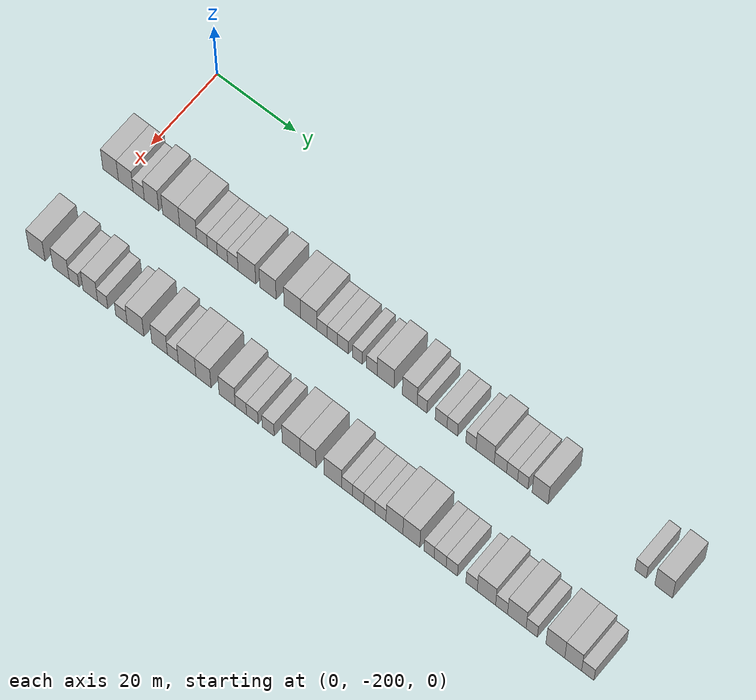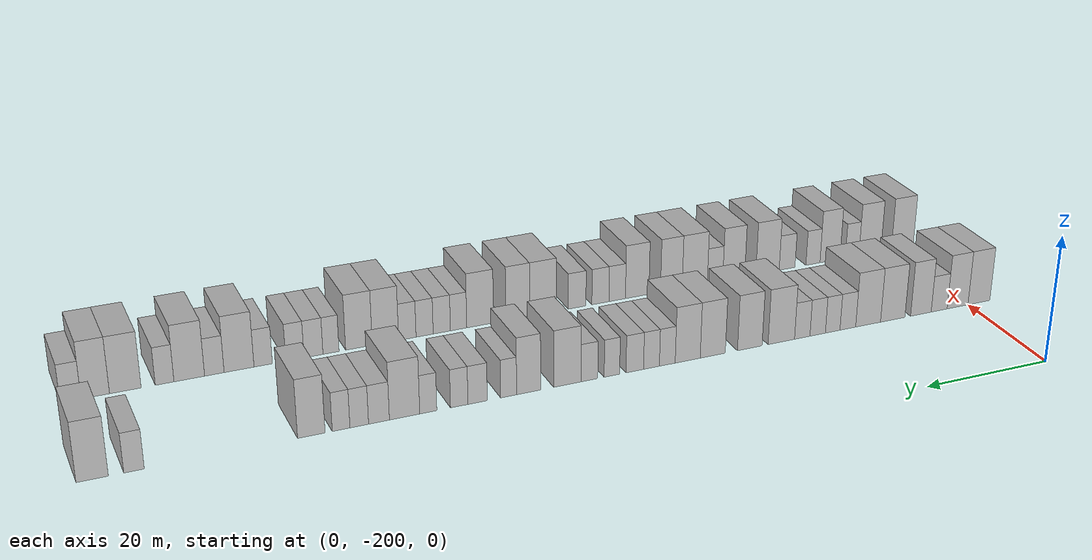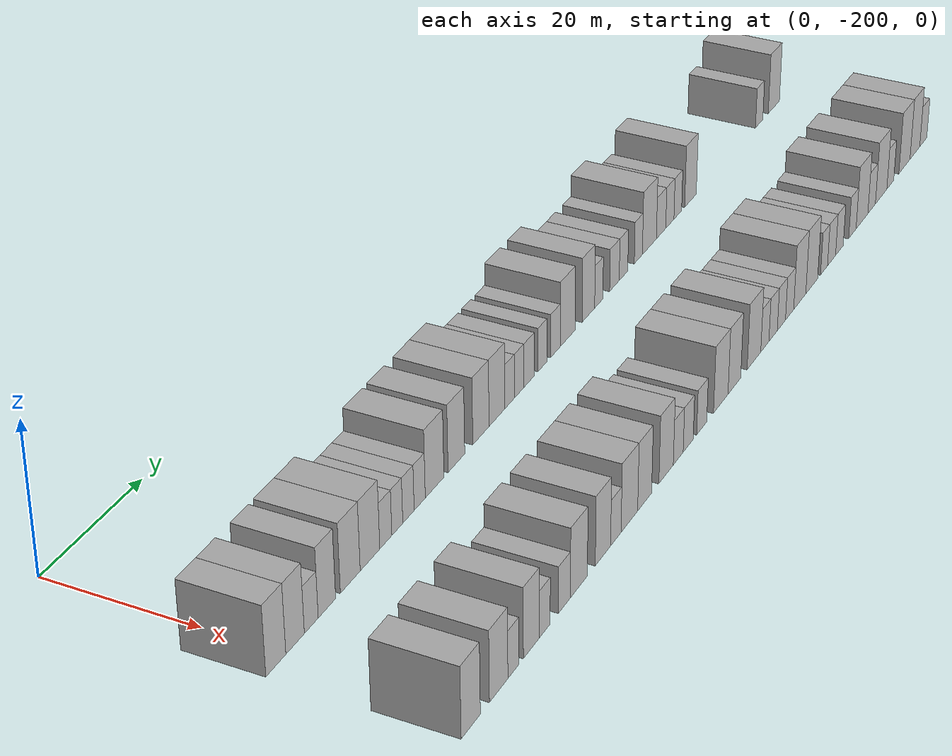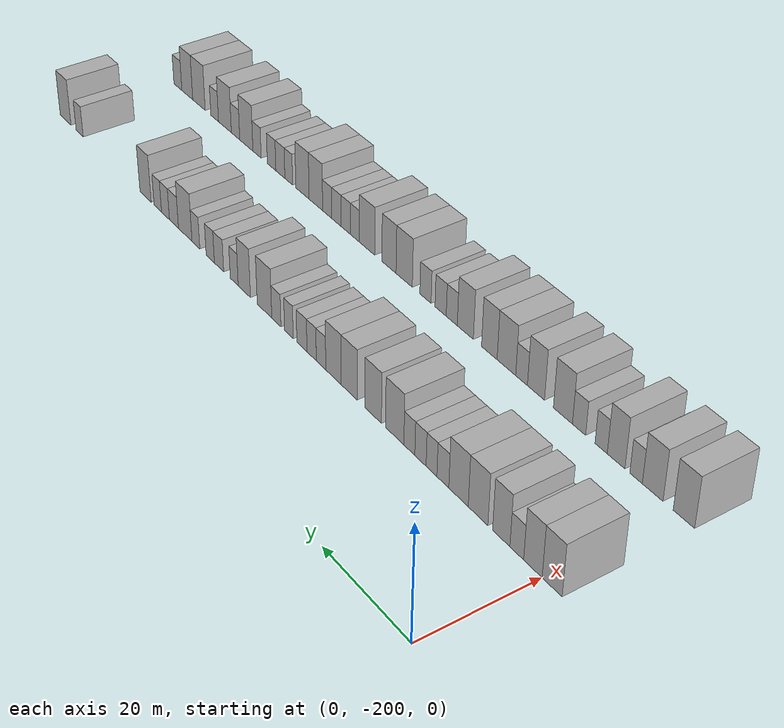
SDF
<sdf version="1.6">
 <world name="default">
  <model name="building_1">
   <static>1</static>
   <pose>25.0000 -202.0031 0 0.000000 0.000000 0.000000</pose>
   <link name="link">
    <pose>0 0 4.50 0 0 0</pose>
    <collision name="collision"><geometry><box><size>10.0000 3.9939 9.0000</size></box></geometry></collision>
    <visual name="visual">
     <cast_shadows>0</cast_shadows>
     <geometry><box><size>10.0000 3.9939 9.0000</size></box></geometry>
     <material>
      <script>
       <uri>model://HANNAS_wall/materials/scripts</uri>
       <uri>model://HANNAS_wall/materials/textures</uri>
       <name>vrc/HANNAS_wall</name>
      </script>
     </material>
    </visual>
   </link>
  </model>
  <model name="building_2">
   <static>1</static>
   <pose>25.0000 -198.1215 0 0.000000 0.000000 0.000000</pose>
   <link name="link">
    <pose>0 0 4.50 0 0 0</pose>
    <collision name="collision"><geometry><box><size>10.0000 3.7692 9.0000</size></box></geometry></collision>
    <visual name="visual">
     <cast_shadows>0</cast_shadows>
     <geometry><box><size>10.0000 3.7692 9.0000</size></box></geometry>
     <material>
      <script>
       <uri>model://HANNAS_wall/materials/scripts</uri>
       <uri>model://HANNAS_wall/materials/textures</uri>
       <name>vrc/HANNAS_wall</name>
      </script>
     </material>
    </visual>
   </link>
  </model>
  <model name="building_3">
   <static>1</static>
   <pose>25.0000 -194.8044 0 0.000000 0.000000 0.000000</pose>
   <link name="link">
    <pose>0 0 3.00 0 0 0</pose>
    <collision name="collision"><geometry><box><size>10.0000 2.8649 6.0000</size></box></geometry></collision>
    <visual name="visual">
     <cast_shadows>0</cast_shadows>
     <geometry><box><size>10.0000 2.8649 6.0000</size></box></geometry>
     <material>
      <script>
       <uri>model://HANNAS_wall/materials/scripts</uri>
       <uri>model://HANNAS_wall/materials/textures</uri>
       <name>vrc/HANNAS_wall</name>
      </script>
     </material>
    </visual>
   </link>
  </model>
  <model name="building_4">
   <static>1</static>
   <pose>25.0000 -191.5345 0 0.000000 0.000000 0.000000</pose>
   <link name="link">
    <pose>0 0 4.50 0 0 0</pose>
    <collision name="collision"><geometry><box><size>10.0000 3.6749 9.0000</size></box></geometry></collision>
    <visual name="visual">
     <cast_shadows>0</cast_shadows>
     <geometry><box><size>10.0000 3.6749 9.0000</size></box></geometry>
     <material>
      <script>
       <uri>model://HANNAS_wall/materials/scripts</uri>
       <uri>model://HANNAS_wall/materials/textures</uri>
       <name>vrc/HANNAS_wall</name>
      </script>
     </material>
    </visual>
   </link>
  </model>
  <model name="building_5">
   <static>1</static>
   <pose>25.0000 -186.5516 0 0.000000 0.000000 0.000000</pose>
   <link name="link">
    <pose>0 0 4.50 0 0 0</pose>
    <collision name="collision"><geometry><box><size>10.0000 4.2910 9.0000</size></box></geometry></collision>
    <visual name="visual">
     <cast_shadows>0</cast_shadows>
     <geometry><box><size>10.0000 4.2910 9.0000</size></box></geometry>
     <material>
      <script>
       <uri>model://HANNAS_wall/materials/scripts</uri>
       <uri>model://HANNAS_wall/materials/textures</uri>
       <name>vrc/HANNAS_wall</name>
      </script>
     </material>
    </visual>
   </link>
  </model>
  <model name="building_6">
   <static>1</static>
   <pose>25.0000 -182.2381 0 0.000000 0.000000 0.000000</pose>
   <link name="link">
    <pose>0 0 4.50 0 0 0</pose>
    <collision name="collision"><geometry><box><size>10.0000 4.3360 9.0000</size></box></geometry></collision>
    <visual name="visual">
     <cast_shadows>0</cast_shadows>
     <geometry><box><size>10.0000 4.3360 9.0000</size></box></geometry>
     <material>
      <script>
       <uri>model://HANNAS_wall/materials/scripts</uri>
       <uri>model://HANNAS_wall/materials/textures</uri>
       <name>vrc/HANNAS_wall</name>
      </script>
     </material>
    </visual>
   </link>
  </model>
  <model name="building_7">
   <static>1</static>
   <pose>25.0000 -178.7124 0 0.000000 0.000000 0.000000</pose>
   <link name="link">
    <pose>0 0 3.00 0 0 0</pose>
    <collision name="collision"><geometry><box><size>10.0000 2.7153 6.0000</size></box></geometry></collision>
    <visual name="visual">
     <cast_shadows>0</cast_shadows>
     <geometry><box><size>10.0000 2.7153 6.0000</size></box></geometry>
     <material>
      <script>
       <uri>model://HANNAS_wall/materials/scripts</uri>
       <uri>model://HANNAS_wall/materials/textures</uri>
       <name>vrc/HANNAS_wall</name>
      </script>
     </material>
    </visual>
   </link>
  </model>
  <model name="building_8">
   <static>1</static>
   <pose>25.0000 -176.1058 0 0.000000 0.000000 0.000000</pose>
   <link name="link">
    <pose>0 0 3.00 0 0 0</pose>
    <collision name="collision"><geometry><box><size>10.0000 2.4980 6.0000</size></box></geometry></collision>
    <visual name="visual">
     <cast_shadows>0</cast_shadows>
     <geometry><box><size>10.0000 2.4980 6.0000</size></box></geometry>
     <material>
      <script>
       <uri>model://HANNAS_wall/materials/scripts</uri>
       <uri>model://HANNAS_wall/materials/textures</uri>
       <name>vrc/HANNAS_wall</name>
      </script>
     </material>
    </visual>
   </link>
  </model>
  <model name="building_9">
   <static>1</static>
   <pose>25.0000 -173.5377 0 0.000000 0.000000 0.000000</pose>
   <link name="link">
    <pose>0 0 3.00 0 0 0</pose>
    <collision name="collision"><geometry><box><size>10.0000 2.6382 6.0000</size></box></geometry></collision>
    <visual name="visual">
     <cast_shadows>0</cast_shadows>
     <geometry><box><size>10.0000 2.6382 6.0000</size></box></geometry>
     <material>
      <script>
       <uri>model://HANNAS_wall/materials/scripts</uri>
       <uri>model://HANNAS_wall/materials/textures</uri>
       <name>vrc/HANNAS_wall</name>
      </script>
     </material>
    </visual>
   </link>
  </model>
  <model name="building_10">
   <static>1</static>
   <pose>25.0000 -170.9153 0 0.000000 0.000000 0.000000</pose>
   <link name="link">
    <pose>0 0 3.00 0 0 0</pose>
    <collision name="collision"><geometry><box><size>10.0000 2.6066 6.0000</size></box></geometry></collision>
    <visual name="visual">
     <cast_shadows>0</cast_shadows>
     <geometry><box><size>10.0000 2.6066 6.0000</size></box></geometry>
     <material>
      <script>
       <uri>model://HANNAS_wall/materials/scripts</uri>
       <uri>model://HANNAS_wall/materials/textures</uri>
       <name>vrc/HANNAS_wall</name>
      </script>
     </material>
    </visual>
   </link>
  </model>
  <model name="building_11">
   <static>1</static>
   <pose>25.0000 -167.3863 0 0.000000 0.000000 0.000000</pose>
   <link name="link">
    <pose>0 0 4.50 0 0 0</pose>
    <collision name="collision"><geometry><box><size>10.0000 4.4516 9.0000</size></box></geometry></collision>
    <visual name="visual">
     <cast_shadows>0</cast_shadows>
     <geometry><box><size>10.0000 4.4516 9.0000</size></box></geometry>
     <material>
      <script>
       <uri>model://HANNAS_wall/materials/scripts</uri>
       <uri>model://HANNAS_wall/materials/textures</uri>
       <name>vrc/HANNAS_wall</name>
      </script>
     </material>
    </visual>
   </link>
  </model>
  <model name="building_12">
   <static>1</static>
   <pose>25.0000 -162.1167 0 0.000000 0.000000 0.000000</pose>
   <link name="link">
    <pose>0 0 4.50 0 0 0</pose>
    <collision name="collision"><geometry><box><size>10.0000 4.0875 9.0000</size></box></geometry></collision>
    <visual name="visual">
     <cast_shadows>0</cast_shadows>
     <geometry><box><size>10.0000 4.0875 9.0000</size></box></geometry>
     <material>
      <script>
       <uri>model://HANNAS_wall/materials/scripts</uri>
       <uri>model://HANNAS_wall/materials/textures</uri>
       <name>vrc/HANNAS_wall</name>
      </script>
     </material>
    </visual>
   </link>
  </model>
  <model name="building_13">
   <static>1</static>
   <pose>25.0000 -156.0221 0 0.000000 0.000000 0.000000</pose>
   <link name="link">
    <pose>0 0 4.50 0 0 0</pose>
    <collision name="collision"><geometry><box><size>10.0000 4.1019 9.0000</size></box></geometry></collision>
    <visual name="visual">
     <cast_shadows>0</cast_shadows>
     <geometry><box><size>10.0000 4.1019 9.0000</size></box></geometry>
     <material>
      <script>
       <uri>model://HANNAS_wall/materials/scripts</uri>
       <uri>model://HANNAS_wall/materials/textures</uri>
       <name>vrc/HANNAS_wall</name>
      </script>
     </material>
    </visual>
   </link>
  </model>
  <model name="building_14">
   <static>1</static>
   <pose>25.0000 -151.9481 0 0.000000 0.000000 0.000000</pose>
   <link name="link">
    <pose>0 0 4.50 0 0 0</pose>
    <collision name="collision"><geometry><box><size>10.0000 4.0460 9.0000</size></box></geometry></collision>
    <visual name="visual">
     <cast_shadows>0</cast_shadows>
     <geometry><box><size>10.0000 4.0460 9.0000</size></box></geometry>
     <material>
      <script>
       <uri>model://HANNAS_wall/materials/scripts</uri>
       <uri>model://HANNAS_wall/materials/textures</uri>
       <name>vrc/HANNAS_wall</name>
      </script>
     </material>
    </visual>
   </link>
  </model>
  <model name="building_15">
   <static>1</static>
   <pose>25.0000 -148.6582 0 0.000000 0.000000 0.000000</pose>
   <link name="link">
    <pose>0 0 3.00 0 0 0</pose>
    <collision name="collision"><geometry><box><size>10.0000 2.5339 6.0000</size></box></geometry></collision>
    <visual name="visual">
     <cast_shadows>0</cast_shadows>
     <geometry><box><size>10.0000 2.5339 6.0000</size></box></geometry>
     <material>
      <script>
       <uri>model://HANNAS_wall/materials/scripts</uri>
       <uri>model://HANNAS_wall/materials/textures</uri>
       <name>vrc/HANNAS_wall</name>
      </script>
     </material>
    </visual>
   </link>
  </model>
  <model name="building_16">
   <static>1</static>
   <pose>25.0000 -146.1278 0 0.000000 0.000000 0.000000</pose>
   <link name="link">
    <pose>0 0 3.00 0 0 0</pose>
    <collision name="collision"><geometry><box><size>10.0000 2.5267 6.0000</size></box></geometry></collision>
    <visual name="visual">
     <cast_shadows>0</cast_shadows>
     <geometry><box><size>10.0000 2.5267 6.0000</size></box></geometry>
     <material>
      <script>
       <uri>model://HANNAS_wall/materials/scripts</uri>
       <uri>model://HANNAS_wall/materials/textures</uri>
       <name>vrc/HANNAS_wall</name>
      </script>
     </material>
    </visual>
   </link>
  </model>
  <model name="building_17">
   <static>1</static>
   <pose>25.0000 -143.4757 0 0.000000 0.000000 0.000000</pose>
   <link name="link">
    <pose>0 0 3.00 0 0 0</pose>
    <collision name="collision"><geometry><box><size>10.0000 2.7776 6.0000</size></box></geometry></collision>
    <visual name="visual">
     <cast_shadows>0</cast_shadows>
     <geometry><box><size>10.0000 2.7776 6.0000</size></box></geometry>
     <material>
      <script>
       <uri>model://HANNAS_wall/materials/scripts</uri>
       <uri>model://HANNAS_wall/materials/textures</uri>
       <name>vrc/HANNAS_wall</name>
      </script>
     </material>
    </visual>
   </link>
  </model>
  <model name="building_18">
   <static>1</static>
   <pose>25.0000 -139.8715 0 0.000000 0.000000 0.000000</pose>
   <link name="link">
    <pose>0 0 3.00 0 0 0</pose>
    <collision name="collision"><geometry><box><size>10.0000 2.4307 6.0000</size></box></geometry></collision>
    <visual name="visual">
     <cast_shadows>0</cast_shadows>
     <geometry><box><size>10.0000 2.4307 6.0000</size></box></geometry>
     <material>
      <script>
       <uri>model://HANNAS_wall/materials/scripts</uri>
       <uri>model://HANNAS_wall/materials/textures</uri>
       <name>vrc/HANNAS_wall</name>
      </script>
     </material>
    </visual>
   </link>
  </model>
  <model name="building_19">
   <static>1</static>
   <pose>25.0000 -136.3448 0 0.000000 0.000000 0.000000</pose>
   <link name="link">
    <pose>0 0 3.00 0 0 0</pose>
    <collision name="collision"><geometry><box><size>10.0000 2.6228 6.0000</size></box></geometry></collision>
    <visual name="visual">
     <cast_shadows>0</cast_shadows>
     <geometry><box><size>10.0000 2.6228 6.0000</size></box></geometry>
     <material>
      <script>
       <uri>model://HANNAS_wall/materials/scripts</uri>
       <uri>model://HANNAS_wall/materials/textures</uri>
       <name>vrc/HANNAS_wall</name>
      </script>
     </material>
    </visual>
   </link>
  </model>
  <model name="building_20">
   <static>1</static>
   <pose>25.0000 -132.9356 0 0.000000 0.000000 0.000000</pose>
   <link name="link">
    <pose>0 0 4.50 0 0 0</pose>
    <collision name="collision"><geometry><box><size>10.0000 4.1955 9.0000</size></box></geometry></collision>
    <visual name="visual">
     <cast_shadows>0</cast_shadows>
     <geometry><box><size>10.0000 4.1955 9.0000</size></box></geometry>
     <material>
      <script>
       <uri>model://HANNAS_wall/materials/scripts</uri>
       <uri>model://HANNAS_wall/materials/textures</uri>
       <name>vrc/HANNAS_wall</name>
      </script>
     </material>
    </visual>
   </link>
  </model>
  <model name="building_21">
   <static>1</static>
   <pose>25.0000 -127.0183 0 0.000000 0.000000 0.000000</pose>
   <link name="link">
    <pose>0 0 4.50 0 0 0</pose>
    <collision name="collision"><geometry><box><size>10.0000 3.6392 9.0000</size></box></geometry></collision>
    <visual name="visual">
     <cast_shadows>0</cast_shadows>
     <geometry><box><size>10.0000 3.6392 9.0000</size></box></geometry>
     <material>
      <script>
       <uri>model://HANNAS_wall/materials/scripts</uri>
       <uri>model://HANNAS_wall/materials/textures</uri>
       <name>vrc/HANNAS_wall</name>
      </script>
     </material>
    </visual>
   </link>
  </model>
  <model name="building_22">
   <static>1</static>
   <pose>25.0000 -123.9982 0 0.000000 0.000000 0.000000</pose>
   <link name="link">
    <pose>0 0 3.00 0 0 0</pose>
    <collision name="collision"><geometry><box><size>10.0000 2.4009 6.0000</size></box></geometry></collision>
    <visual name="visual">
     <cast_shadows>0</cast_shadows>
     <geometry><box><size>10.0000 2.4009 6.0000</size></box></geometry>
     <material>
      <script>
       <uri>model://HANNAS_wall/materials/scripts</uri>
       <uri>model://HANNAS_wall/materials/textures</uri>
       <name>vrc/HANNAS_wall</name>
      </script>
     </material>
    </visual>
   </link>
  </model>
  <model name="building_23">
   <static>1</static>
   <pose>25.0000 -119.3594 0 0.000000 0.000000 0.000000</pose>
   <link name="link">
    <pose>0 0 3.00 0 0 0</pose>
    <collision name="collision"><geometry><box><size>10.0000 2.8768 6.0000</size></box></geometry></collision>
    <visual name="visual">
     <cast_shadows>0</cast_shadows>
     <geometry><box><size>10.0000 2.8768 6.0000</size></box></geometry>
     <material>
      <script>
       <uri>model://HANNAS_wall/materials/scripts</uri>
       <uri>model://HANNAS_wall/materials/textures</uri>
       <name>vrc/HANNAS_wall</name>
      </script>
     </material>
    </visual>
   </link>
  </model>
  <model name="building_24">
   <static>1</static>
   <pose>25.0000 -116.6311 0 0.000000 0.000000 0.000000</pose>
   <link name="link">
    <pose>0 0 3.00 0 0 0</pose>
    <collision name="collision"><geometry><box><size>10.0000 2.5799 6.0000</size></box></geometry></collision>
    <visual name="visual">
     <cast_shadows>0</cast_shadows>
     <geometry><box><size>10.0000 2.5799 6.0000</size></box></geometry>
     <material>
      <script>
       <uri>model://HANNAS_wall/materials/scripts</uri>
       <uri>model://HANNAS_wall/materials/textures</uri>
       <name>vrc/HANNAS_wall</name>
      </script>
     </material>
    </visual>
   </link>
  </model>
  <model name="building_25">
   <static>1</static>
   <pose>25.0000 -112.0945 0 0.000000 0.000000 0.000000</pose>
   <link name="link">
    <pose>0 0 3.00 0 0 0</pose>
    <collision name="collision"><geometry><box><size>10.0000 2.4932 6.0000</size></box></geometry></collision>
    <visual name="visual">
     <cast_shadows>0</cast_shadows>
     <geometry><box><size>10.0000 2.4932 6.0000</size></box></geometry>
     <material>
      <script>
       <uri>model://HANNAS_wall/materials/scripts</uri>
       <uri>model://HANNAS_wall/materials/textures</uri>
       <name>vrc/HANNAS_wall</name>
      </script>
     </material>
    </visual>
   </link>
  </model>
  <model name="building_26">
   <static>1</static>
   <pose>25.0000 -108.6519 0 0.000000 0.000000 0.000000</pose>
   <link name="link">
    <pose>0 0 4.50 0 0 0</pose>
    <collision name="collision"><geometry><box><size>10.0000 4.3920 9.0000</size></box></geometry></collision>
    <visual name="visual">
     <cast_shadows>0</cast_shadows>
     <geometry><box><size>10.0000 4.3920 9.0000</size></box></geometry>
     <material>
      <script>
       <uri>model://HANNAS_wall/materials/scripts</uri>
       <uri>model://HANNAS_wall/materials/textures</uri>
       <name>vrc/HANNAS_wall</name>
      </script>
     </material>
    </visual>
   </link>
  </model>
  <model name="building_27">
   <static>1</static>
   <pose>25.0000 -104.9623 0 0.000000 0.000000 0.000000</pose>
   <link name="link">
    <pose>0 0 3.00 0 0 0</pose>
    <collision name="collision"><geometry><box><size>10.0000 2.9872 6.0000</size></box></geometry></collision>
    <visual name="visual">
     <cast_shadows>0</cast_shadows>
     <geometry><box><size>10.0000 2.9872 6.0000</size></box></geometry>
     <material>
      <script>
       <uri>model://HANNAS_wall/materials/scripts</uri>
       <uri>model://HANNAS_wall/materials/textures</uri>
       <name>vrc/HANNAS_wall</name>
      </script>
     </material>
    </visual>
   </link>
  </model>
  <model name="building_28">
   <static>1</static>
   <pose>25.0000 -102.1458 0 0.000000 0.000000 0.000000</pose>
   <link name="link">
    <pose>0 0 3.00 0 0 0</pose>
    <collision name="collision"><geometry><box><size>10.0000 2.6458 6.0000</size></box></geometry></collision>
    <visual name="visual">
     <cast_shadows>0</cast_shadows>
     <geometry><box><size>10.0000 2.6458 6.0000</size></box></geometry>
     <material>
      <script>
       <uri>model://HANNAS_wall/materials/scripts</uri>
       <uri>model://HANNAS_wall/materials/textures</uri>
       <name>vrc/HANNAS_wall</name>
      </script>
     </material>
    </visual>
   </link>
  </model>
  <model name="building_29">
   <static>1</static>
   <pose>25.0000 -99.5724 0 0.000000 0.000000 0.000000</pose>
   <link name="link">
    <pose>0 0 3.00 0 0 0</pose>
    <collision name="collision"><geometry><box><size>10.0000 2.5010 6.0000</size></box></geometry></collision>
    <visual name="visual">
     <cast_shadows>0</cast_shadows>
     <geometry><box><size>10.0000 2.5010 6.0000</size></box></geometry>
     <material>
      <script>
       <uri>model://HANNAS_wall/materials/scripts</uri>
       <uri>model://HANNAS_wall/materials/textures</uri>
       <name>vrc/HANNAS_wall</name>
      </script>
     </material>
    </visual>
   </link>
  </model>
  <model name="building_30">
   <static>1</static>
   <pose>25.0000 -95.3956 0 0.000000 0.000000 0.000000</pose>
   <link name="link">
    <pose>0 0 4.50 0 0 0</pose>
    <collision name="collision"><geometry><box><size>10.0000 3.8526 9.0000</size></box></geometry></collision>
    <visual name="visual">
     <cast_shadows>0</cast_shadows>
     <geometry><box><size>10.0000 3.8526 9.0000</size></box></geometry>
     <material>
      <script>
       <uri>model://HANNAS_wall/materials/scripts</uri>
       <uri>model://HANNAS_wall/materials/textures</uri>
       <name>vrc/HANNAS_wall</name>
      </script>
     </material>
    </visual>
   </link>
  </model>
  <model name="building_31">
   <static>1</static>
   <pose>25.0000 -71.4348 0 0.000000 0.000000 0.000000</pose>
   <link name="link">
    <pose>0 0 3.00 0 0 0</pose>
    <collision name="collision"><geometry><box><size>10.0000 2.6896 6.0000</size></box></geometry></collision>
    <visual name="visual">
     <cast_shadows>0</cast_shadows>
     <geometry><box><size>10.0000 2.6896 6.0000</size></box></geometry>
     <material>
      <script>
       <uri>model://HANNAS_wall/materials/scripts</uri>
       <uri>model://HANNAS_wall/materials/textures</uri>
       <name>vrc/HANNAS_wall</name>
      </script>
     </material>
    </visual>
   </link>
  </model>
  <model name="building_32">
   <static>1</static>
   <pose>25.0000 -66.0001 0 0.000000 0.000000 0.000000</pose>
   <link name="link">
    <pose>0 0 4.50 0 0 0</pose>
    <collision name="collision"><geometry><box><size>10.0000 4.1798 9.0000</size></box></geometry></collision>
    <visual name="visual">
     <cast_shadows>0</cast_shadows>
     <geometry><box><size>10.0000 4.1798 9.0000</size></box></geometry>
     <material>
      <script>
       <uri>model://HANNAS_wall/materials/scripts</uri>
       <uri>model://HANNAS_wall/materials/textures</uri>
       <name>vrc/HANNAS_wall</name>
      </script>
     </material>
    </visual>
   </link>
  </model>
  <model name="building_98">
   <static>1</static>
   <pose>47.0000 -201.9204 0 0.000000 0.000000 0.000000</pose>
   <link name="link">
    <pose>0 0 4.50 0 0 0</pose>
    <collision name="collision"><geometry><box><size>10.0000 4.1591 9.0000</size></box></geometry></collision>
    <visual name="visual">
     <cast_shadows>0</cast_shadows>
     <geometry><box><size>10.0000 4.1591 9.0000</size></box></geometry>
     <material>
      <script>
       <uri>model://HANNAS_wall/materials/scripts</uri>
       <uri>model://HANNAS_wall/materials/textures</uri>
       <name>vrc/HANNAS_wall</name>
      </script>
     </material>
    </visual>
   </link>
  </model>
  <model name="building_99">
   <static>1</static>
   <pose>47.0000 -195.7746 0 0.000000 0.000000 0.000000</pose>
   <link name="link">
    <pose>0 0 4.50 0 0 0</pose>
    <collision name="collision"><geometry><box><size>10.0000 4.1327 9.0000</size></box></geometry></collision>
    <visual name="visual">
     <cast_shadows>0</cast_shadows>
     <geometry><box><size>10.0000 4.1327 9.0000</size></box></geometry>
     <material>
      <script>
       <uri>model://HANNAS_wall/materials/scripts</uri>
       <uri>model://HANNAS_wall/materials/textures</uri>
       <name>vrc/HANNAS_wall</name>
      </script>
     </material>
    </visual>
   </link>
  </model>
  <model name="building_100">
   <static>1</static>
   <pose>47.0000 -192.4373 0 0.000000 0.000000 0.000000</pose>
   <link name="link">
    <pose>0 0 3.00 0 0 0</pose>
    <collision name="collision"><geometry><box><size>10.0000 2.5418 6.0000</size></box></geometry></collision>
    <visual name="visual">
     <cast_shadows>0</cast_shadows>
     <geometry><box><size>10.0000 2.5418 6.0000</size></box></geometry>
     <material>
      <script>
       <uri>model://HANNAS_wall/materials/scripts</uri>
       <uri>model://HANNAS_wall/materials/textures</uri>
       <name>vrc/HANNAS_wall</name>
      </script>
     </material>
    </visual>
   </link>
  </model>
  <model name="building_101">
   <static>1</static>
   <pose>47.0000 -188.3199 0 0.000000 0.000000 0.000000</pose>
   <link name="link">
    <pose>0 0 4.50 0 0 0</pose>
    <collision name="collision"><geometry><box><size>10.0000 3.6932 9.0000</size></box></geometry></collision>
    <visual name="visual">
     <cast_shadows>0</cast_shadows>
     <geometry><box><size>10.0000 3.6932 9.0000</size></box></geometry>
     <material>
      <script>
       <uri>model://HANNAS_wall/materials/scripts</uri>
       <uri>model://HANNAS_wall/materials/textures</uri>
       <name>vrc/HANNAS_wall</name>
      </script>
     </material>
    </visual>
   </link>
  </model>
  <model name="building_102">
   <static>1</static>
   <pose>47.0000 -185.1766 0 0.000000 0.000000 0.000000</pose>
   <link name="link">
    <pose>0 0 3.00 0 0 0</pose>
    <collision name="collision"><geometry><box><size>10.0000 2.5933 6.0000</size></box></geometry></collision>
    <visual name="visual">
     <cast_shadows>0</cast_shadows>
     <geometry><box><size>10.0000 2.5933 6.0000</size></box></geometry>
     <material>
      <script>
       <uri>model://HANNAS_wall/materials/scripts</uri>
       <uri>model://HANNAS_wall/materials/textures</uri>
       <name>vrc/HANNAS_wall</name>
      </script>
     </material>
    </visual>
   </link>
  </model>
  <model name="building_103">
   <static>1</static>
   <pose>47.0000 -180.4412 0 0.000000 0.000000 0.000000</pose>
   <link name="link">
    <pose>0 0 3.00 0 0 0</pose>
    <collision name="collision"><geometry><box><size>10.0000 2.8775 6.0000</size></box></geometry></collision>
    <visual name="visual">
     <cast_shadows>0</cast_shadows>
     <geometry><box><size>10.0000 2.8775 6.0000</size></box></geometry>
     <material>
      <script>
       <uri>model://HANNAS_wall/materials/scripts</uri>
       <uri>model://HANNAS_wall/materials/textures</uri>
       <name>vrc/HANNAS_wall</name>
      </script>
     </material>
    </visual>
   </link>
  </model>
  <model name="building_104">
   <static>1</static>
   <pose>47.0000 -176.8933 0 0.000000 0.000000 0.000000</pose>
   <link name="link">
    <pose>0 0 4.50 0 0 0</pose>
    <collision name="collision"><geometry><box><size>10.0000 4.2183 9.0000</size></box></geometry></collision>
    <visual name="visual">
     <cast_shadows>0</cast_shadows>
     <geometry><box><size>10.0000 4.2183 9.0000</size></box></geometry>
     <material>
      <script>
       <uri>model://HANNAS_wall/materials/scripts</uri>
       <uri>model://HANNAS_wall/materials/textures</uri>
       <name>vrc/HANNAS_wall</name>
      </script>
     </material>
    </visual>
   </link>
  </model>
  <model name="building_105">
   <static>1</static>
   <pose>47.0000 -170.8302 0 0.000000 0.000000 0.000000</pose>
   <link name="link">
    <pose>0 0 4.50 0 0 0</pose>
    <collision name="collision"><geometry><box><size>10.0000 3.9079 9.0000</size></box></geometry></collision>
    <visual name="visual">
     <cast_shadows>0</cast_shadows>
     <geometry><box><size>10.0000 3.9079 9.0000</size></box></geometry>
     <material>
      <script>
       <uri>model://HANNAS_wall/materials/scripts</uri>
       <uri>model://HANNAS_wall/materials/textures</uri>
       <name>vrc/HANNAS_wall</name>
      </script>
     </material>
    </visual>
   </link>
  </model>
  <model name="building_106">
   <static>1</static>
   <pose>47.0000 -167.5095 0 0.000000 0.000000 0.000000</pose>
   <link name="link">
    <pose>0 0 3.00 0 0 0</pose>
    <collision name="collision"><geometry><box><size>10.0000 2.7335 6.0000</size></box></geometry></collision>
    <visual name="visual">
     <cast_shadows>0</cast_shadows>
     <geometry><box><size>10.0000 2.7335 6.0000</size></box></geometry>
     <material>
      <script>
       <uri>model://HANNAS_wall/materials/scripts</uri>
       <uri>model://HANNAS_wall/materials/textures</uri>
       <name>vrc/HANNAS_wall</name>
      </script>
     </material>
    </visual>
   </link>
  </model>
  <model name="building_107">
   <static>1</static>
   <pose>47.0000 -163.9434 0 0.000000 0.000000 0.000000</pose>
   <link name="link">
    <pose>0 0 4.50 0 0 0</pose>
    <collision name="collision"><geometry><box><size>10.0000 4.3987 9.0000</size></box></geometry></collision>
    <visual name="visual">
     <cast_shadows>0</cast_shadows>
     <geometry><box><size>10.0000 4.3987 9.0000</size></box></geometry>
     <material>
      <script>
       <uri>model://HANNAS_wall/materials/scripts</uri>
       <uri>model://HANNAS_wall/materials/textures</uri>
       <name>vrc/HANNAS_wall</name>
      </script>
     </material>
    </visual>
   </link>
  </model>
  <model name="building_108">
   <static>1</static>
   <pose>47.0000 -159.8574 0 0.000000 0.000000 0.000000</pose>
   <link name="link">
    <pose>0 0 4.50 0 0 0</pose>
    <collision name="collision"><geometry><box><size>10.0000 3.7733 9.0000</size></box></geometry></collision>
    <visual name="visual">
     <cast_shadows>0</cast_shadows>
     <geometry><box><size>10.0000 3.7733 9.0000</size></box></geometry>
     <material>
      <script>
       <uri>model://HANNAS_wall/materials/scripts</uri>
       <uri>model://HANNAS_wall/materials/textures</uri>
       <name>vrc/HANNAS_wall</name>
      </script>
     </material>
    </visual>
   </link>
  </model>
  <model name="building_109">
   <static>1</static>
   <pose>47.0000 -153.9655 0 0.000000 0.000000 0.000000</pose>
   <link name="link">
    <pose>0 0 4.50 0 0 0</pose>
    <collision name="collision"><geometry><box><size>10.0000 4.0104 9.0000</size></box></geometry></collision>
    <visual name="visual">
     <cast_shadows>0</cast_shadows>
     <geometry><box><size>10.0000 4.0104 9.0000</size></box></geometry>
     <material>
      <script>
       <uri>model://HANNAS_wall/materials/scripts</uri>
       <uri>model://HANNAS_wall/materials/textures</uri>
       <name>vrc/HANNAS_wall</name>
      </script>
     </material>
    </visual>
   </link>
  </model>
  <model name="building_110">
   <static>1</static>
   <pose>47.0000 -150.5582 0 0.000000 0.000000 0.000000</pose>
   <link name="link">
    <pose>0 0 3.00 0 0 0</pose>
    <collision name="collision"><geometry><box><size>10.0000 2.8043 6.0000</size></box></geometry></collision>
    <visual name="visual">
     <cast_shadows>0</cast_shadows>
     <geometry><box><size>10.0000 2.8043 6.0000</size></box></geometry>
     <material>
      <script>
       <uri>model://HANNAS_wall/materials/scripts</uri>
       <uri>model://HANNAS_wall/materials/textures</uri>
       <name>vrc/HANNAS_wall</name>
      </script>
     </material>
    </visual>
   </link>
  </model>
  <model name="building_111">
   <static>1</static>
   <pose>47.0000 -147.7157 0 0.000000 0.000000 0.000000</pose>
   <link name="link">
    <pose>0 0 3.00 0 0 0</pose>
    <collision name="collision"><geometry><box><size>10.0000 2.8806 6.0000</size></box></geometry></collision>
    <visual name="visual">
     <cast_shadows>0</cast_shadows>
     <geometry><box><size>10.0000 2.8806 6.0000</size></box></geometry>
     <material>
      <script>
       <uri>model://HANNAS_wall/materials/scripts</uri>
       <uri>model://HANNAS_wall/materials/textures</uri>
       <name>vrc/HANNAS_wall</name>
      </script>
     </material>
    </visual>
   </link>
  </model>
  <model name="building_112">
   <static>1</static>
   <pose>47.0000 -143.7985 0 0.000000 0.000000 0.000000</pose>
   <link name="link">
    <pose>0 0 3.00 0 0 0</pose>
    <collision name="collision"><geometry><box><size>10.0000 2.9539 6.0000</size></box></geometry></collision>
    <visual name="visual">
     <cast_shadows>0</cast_shadows>
     <geometry><box><size>10.0000 2.9539 6.0000</size></box></geometry>
     <material>
      <script>
       <uri>model://HANNAS_wall/materials/scripts</uri>
       <uri>model://HANNAS_wall/materials/textures</uri>
       <name>vrc/HANNAS_wall</name>
      </script>
     </material>
    </visual>
   </link>
  </model>
  <model name="building_113">
   <static>1</static>
   <pose>47.0000 -138.1317 0 0.000000 0.000000 0.000000</pose>
   <link name="link">
    <pose>0 0 4.50 0 0 0</pose>
    <collision name="collision"><geometry><box><size>10.0000 4.3795 9.0000</size></box></geometry></collision>
    <visual name="visual">
     <cast_shadows>0</cast_shadows>
     <geometry><box><size>10.0000 4.3795 9.0000</size></box></geometry>
     <material>
      <script>
       <uri>model://HANNAS_wall/materials/scripts</uri>
       <uri>model://HANNAS_wall/materials/textures</uri>
       <name>vrc/HANNAS_wall</name>
      </script>
     </material>
    </visual>
   </link>
  </model>
  <model name="building_114">
   <static>1</static>
   <pose>47.0000 -133.9964 0 0.000000 0.000000 0.000000</pose>
   <link name="link">
    <pose>0 0 4.50 0 0 0</pose>
    <collision name="collision"><geometry><box><size>10.0000 3.8912 9.0000</size></box></geometry></collision>
    <visual name="visual">
     <cast_shadows>0</cast_shadows>
     <geometry><box><size>10.0000 3.8912 9.0000</size></box></geometry>
     <material>
      <script>
       <uri>model://HANNAS_wall/materials/scripts</uri>
       <uri>model://HANNAS_wall/materials/textures</uri>
       <name>vrc/HANNAS_wall</name>
      </script>
     </material>
    </visual>
   </link>
  </model>
  <model name="building_115">
   <static>1</static>
   <pose>47.0000 -127.8987 0 0.000000 0.000000 0.000000</pose>
   <link name="link">
    <pose>0 0 4.50 0 0 0</pose>
    <collision name="collision"><geometry><box><size>10.0000 4.3041 9.0000</size></box></geometry></collision>
    <visual name="visual">
     <cast_shadows>0</cast_shadows>
     <geometry><box><size>10.0000 4.3041 9.0000</size></box></geometry>
     <material>
      <script>
       <uri>model://HANNAS_wall/materials/scripts</uri>
       <uri>model://HANNAS_wall/materials/textures</uri>
       <name>vrc/HANNAS_wall</name>
      </script>
     </material>
    </visual>
   </link>
  </model>
  <model name="building_116">
   <static>1</static>
   <pose>47.0000 -124.4427 0 0.000000 0.000000 0.000000</pose>
   <link name="link">
    <pose>0 0 3.00 0 0 0</pose>
    <collision name="collision"><geometry><box><size>10.0000 2.6079 6.0000</size></box></geometry></collision>
    <visual name="visual">
     <cast_shadows>0</cast_shadows>
     <geometry><box><size>10.0000 2.6079 6.0000</size></box></geometry>
     <material>
      <script>
       <uri>model://HANNAS_wall/materials/scripts</uri>
       <uri>model://HANNAS_wall/materials/textures</uri>
       <name>vrc/HANNAS_wall</name>
      </script>
     </material>
    </visual>
   </link>
  </model>
  <model name="building_117">
   <static>1</static>
   <pose>47.0000 -121.7723 0 0.000000 0.000000 0.000000</pose>
   <link name="link">
    <pose>0 0 3.00 0 0 0</pose>
    <collision name="collision"><geometry><box><size>10.0000 2.7329 6.0000</size></box></geometry></collision>
    <visual name="visual">
     <cast_shadows>0</cast_shadows>
     <geometry><box><size>10.0000 2.7329 6.0000</size></box></geometry>
     <material>
      <script>
       <uri>model://HANNAS_wall/materials/scripts</uri>
       <uri>model://HANNAS_wall/materials/textures</uri>
       <name>vrc/HANNAS_wall</name>
      </script>
     </material>
    </visual>
   </link>
  </model>
  <model name="building_118">
   <static>1</static>
   <pose>47.0000 -119.0577 0 0.000000 0.000000 0.000000</pose>
   <link name="link">
    <pose>0 0 3.00 0 0 0</pose>
    <collision name="collision"><geometry><box><size>10.0000 2.6962 6.0000</size></box></geometry></collision>
    <visual name="visual">
     <cast_shadows>0</cast_shadows>
     <geometry><box><size>10.0000 2.6962 6.0000</size></box></geometry>
     <material>
      <script>
       <uri>model://HANNAS_wall/materials/scripts</uri>
       <uri>model://HANNAS_wall/materials/textures</uri>
       <name>vrc/HANNAS_wall</name>
      </script>
     </material>
    </visual>
   </link>
  </model>
  <model name="building_119">
   <static>1</static>
   <pose>47.0000 -116.3451 0 0.000000 0.000000 0.000000</pose>
   <link name="link">
    <pose>0 0 3.00 0 0 0</pose>
    <collision name="collision"><geometry><box><size>10.0000 2.7290 6.0000</size></box></geometry></collision>
    <visual name="visual">
     <cast_shadows>0</cast_shadows>
     <geometry><box><size>10.0000 2.7290 6.0000</size></box></geometry>
     <material>
      <script>
       <uri>model://HANNAS_wall/materials/scripts</uri>
       <uri>model://HANNAS_wall/materials/textures</uri>
       <name>vrc/HANNAS_wall</name>
      </script>
     </material>
    </visual>
   </link>
  </model>
  <model name="building_120">
   <static>1</static>
   <pose>47.0000 -112.9333 0 0.000000 0.000000 0.000000</pose>
   <link name="link">
    <pose>0 0 4.50 0 0 0</pose>
    <collision name="collision"><geometry><box><size>10.0000 4.0945 9.0000</size></box></geometry></collision>
    <visual name="visual">
     <cast_shadows>0</cast_shadows>
     <geometry><box><size>10.0000 4.0945 9.0000</size></box></geometry>
     <material>
      <script>
       <uri>model://HANNAS_wall/materials/scripts</uri>
       <uri>model://HANNAS_wall/materials/textures</uri>
       <name>vrc/HANNAS_wall</name>
      </script>
     </material>
    </visual>
   </link>
  </model>
  <model name="building_121">
   <static>1</static>
   <pose>47.0000 -108.8389 0 0.000000 0.000000 0.000000</pose>
   <link name="link">
    <pose>0 0 4.50 0 0 0</pose>
    <collision name="collision"><geometry><box><size>10.0000 4.0945 9.0000</size></box></geometry></collision>
    <visual name="visual">
     <cast_shadows>0</cast_shadows>
     <geometry><box><size>10.0000 4.0945 9.0000</size></box></geometry>
     <material>
      <script>
       <uri>model://HANNAS_wall/materials/scripts</uri>
       <uri>model://HANNAS_wall/materials/textures</uri>
       <name>vrc/HANNAS_wall</name>
      </script>
     </material>
    </visual>
   </link>
  </model>
  <model name="building_122">
   <static>1</static>
   <pose>47.0000 -104.5697 0 0.000000 0.000000 0.000000</pose>
   <link name="link">
    <pose>0 0 3.00 0 0 0</pose>
    <collision name="collision"><geometry><box><size>10.0000 2.4439 6.0000</size></box></geometry></collision>
    <visual name="visual">
     <cast_shadows>0</cast_shadows>
     <geometry><box><size>10.0000 2.4439 6.0000</size></box></geometry>
     <material>
      <script>
       <uri>model://HANNAS_wall/materials/scripts</uri>
       <uri>model://HANNAS_wall/materials/textures</uri>
       <name>vrc/HANNAS_wall</name>
      </script>
     </material>
    </visual>
   </link>
  </model>
  <model name="building_123">
   <static>1</static>
   <pose>47.0000 -101.9143 0 0.000000 0.000000 0.000000</pose>
   <link name="link">
    <pose>0 0 3.00 0 0 0</pose>
    <collision name="collision"><geometry><box><size>10.0000 2.8669 6.0000</size></box></geometry></collision>
    <visual name="visual">
     <cast_shadows>0</cast_shadows>
     <geometry><box><size>10.0000 2.8669 6.0000</size></box></geometry>
     <material>
      <script>
       <uri>model://HANNAS_wall/materials/scripts</uri>
       <uri>model://HANNAS_wall/materials/textures</uri>
       <name>vrc/HANNAS_wall</name>
      </script>
     </material>
    </visual>
   </link>
  </model>
  <model name="building_124">
   <static>1</static>
   <pose>47.0000 -99.1141 0 0.000000 0.000000 0.000000</pose>
   <link name="link">
    <pose>0 0 3.00 0 0 0</pose>
    <collision name="collision"><geometry><box><size>10.0000 2.7335 6.0000</size></box></geometry></collision>
    <visual name="visual">
     <cast_shadows>0</cast_shadows>
     <geometry><box><size>10.0000 2.7335 6.0000</size></box></geometry>
     <material>
      <script>
       <uri>model://HANNAS_wall/materials/scripts</uri>
       <uri>model://HANNAS_wall/materials/textures</uri>
       <name>vrc/HANNAS_wall</name>
      </script>
     </material>
    </visual>
   </link>
  </model>
  <model name="building_125">
   <static>1</static>
   <pose>47.0000 -94.3894 0 0.000000 0.000000 0.000000</pose>
   <link name="link">
    <pose>0 0 3.00 0 0 0</pose>
    <collision name="collision"><geometry><box><size>10.0000 2.7160 6.0000</size></box></geometry></collision>
    <visual name="visual">
     <cast_shadows>0</cast_shadows>
     <geometry><box><size>10.0000 2.7160 6.0000</size></box></geometry>
     <material>
      <script>
       <uri>model://HANNAS_wall/materials/scripts</uri>
       <uri>model://HANNAS_wall/materials/textures</uri>
       <name>vrc/HANNAS_wall</name>
      </script>
     </material>
    </visual>
   </link>
  </model>
  <model name="building_126">
   <static>1</static>
   <pose>47.0000 -90.8347 0 0.000000 0.000000 0.000000</pose>
   <link name="link">
    <pose>0 0 4.50 0 0 0</pose>
    <collision name="collision"><geometry><box><size>10.0000 4.3933 9.0000</size></box></geometry></collision>
    <visual name="visual">
     <cast_shadows>0</cast_shadows>
     <geometry><box><size>10.0000 4.3933 9.0000</size></box></geometry>
     <material>
      <script>
       <uri>model://HANNAS_wall/materials/scripts</uri>
       <uri>model://HANNAS_wall/materials/textures</uri>
       <name>vrc/HANNAS_wall</name>
      </script>
     </material>
    </visual>
   </link>
  </model>
  <model name="building_127">
   <static>1</static>
   <pose>47.0000 -87.2177 0 0.000000 0.000000 0.000000</pose>
   <link name="link">
    <pose>0 0 3.00 0 0 0</pose>
    <collision name="collision"><geometry><box><size>10.0000 2.8408 6.0000</size></box></geometry></collision>
    <visual name="visual">
     <cast_shadows>0</cast_shadows>
     <geometry><box><size>10.0000 2.8408 6.0000</size></box></geometry>
     <material>
      <script>
       <uri>model://HANNAS_wall/materials/scripts</uri>
       <uri>model://HANNAS_wall/materials/textures</uri>
       <name>vrc/HANNAS_wall</name>
      </script>
     </material>
    </visual>
   </link>
  </model>
  <model name="building_128">
   <static>1</static>
   <pose>47.0000 -83.5882 0 0.000000 0.000000 0.000000</pose>
   <link name="link">
    <pose>0 0 4.50 0 0 0</pose>
    <collision name="collision"><geometry><box><size>10.0000 4.4181 9.0000</size></box></geometry></collision>
    <visual name="visual">
     <cast_shadows>0</cast_shadows>
     <geometry><box><size>10.0000 4.4181 9.0000</size></box></geometry>
     <material>
      <script>
       <uri>model://HANNAS_wall/materials/scripts</uri>
       <uri>model://HANNAS_wall/materials/textures</uri>
       <name>vrc/HANNAS_wall</name>
      </script>
     </material>
    </visual>
   </link>
  </model>
  <model name="building_129">
   <static>1</static>
   <pose>47.0000 -80.0402 0 0.000000 0.000000 0.000000</pose>
   <link name="link">
    <pose>0 0 3.00 0 0 0</pose>
    <collision name="collision"><geometry><box><size>10.0000 2.6779 6.0000</size></box></geometry></collision>
    <visual name="visual">
     <cast_shadows>0</cast_shadows>
     <geometry><box><size>10.0000 2.6779 6.0000</size></box></geometry>
     <material>
      <script>
       <uri>model://HANNAS_wall/materials/scripts</uri>
       <uri>model://HANNAS_wall/materials/textures</uri>
       <name>vrc/HANNAS_wall</name>
      </script>
     </material>
    </visual>
   </link>
  </model>
  <model name="building_130">
   <static>1</static>
   <pose>47.0000 -74.4733 0 0.000000 0.000000 0.000000</pose>
   <link name="link">
    <pose>0 0 4.50 0 0 0</pose>
    <collision name="collision"><geometry><box><size>10.0000 4.4560 9.0000</size></box></geometry></collision>
    <visual name="visual">
     <cast_shadows>0</cast_shadows>
     <geometry><box><size>10.0000 4.4560 9.0000</size></box></geometry>
     <material>
      <script>
       <uri>model://HANNAS_wall/materials/scripts</uri>
       <uri>model://HANNAS_wall/materials/textures</uri>
       <name>vrc/HANNAS_wall</name>
      </script>
     </material>
    </visual>
   </link>
  </model>
  <model name="building_131">
   <static>1</static>
   <pose>47.0000 -70.2623 0 0.000000 0.000000 0.000000</pose>
   <link name="link">
    <pose>0 0 4.50 0 0 0</pose>
    <collision name="collision"><geometry><box><size>10.0000 3.9660 9.0000</size></box></geometry></collision>
    <visual name="visual">
     <cast_shadows>0</cast_shadows>
     <geometry><box><size>10.0000 3.9660 9.0000</size></box></geometry>
     <material>
      <script>
       <uri>model://HANNAS_wall/materials/scripts</uri>
       <uri>model://HANNAS_wall/materials/textures</uri>
       <name>vrc/HANNAS_wall</name>
      </script>
     </material>
    </visual>
   </link>
  </model>
  <model name="building_132">
   <static>1</static>
   <pose>47.0000 -66.8241 0 0.000000 0.000000 0.000000</pose>
   <link name="link">
    <pose>0 0 3.00 0 0 0</pose>
    <collision name="collision"><geometry><box><size>10.0000 2.9103 6.0000</size></box></geometry></collision>
    <visual name="visual">
     <cast_shadows>0</cast_shadows>
     <geometry><box><size>10.0000 2.9103 6.0000</size></box></geometry>
     <material>
      <script>
       <uri>model://HANNAS_wall/materials/scripts</uri>
       <uri>model://HANNAS_wall/materials/textures</uri>
       <name>vrc/HANNAS_wall</name>
      </script>
     </material>
    </visual>
   </link>
  </model>
 </world>
</sdf>
